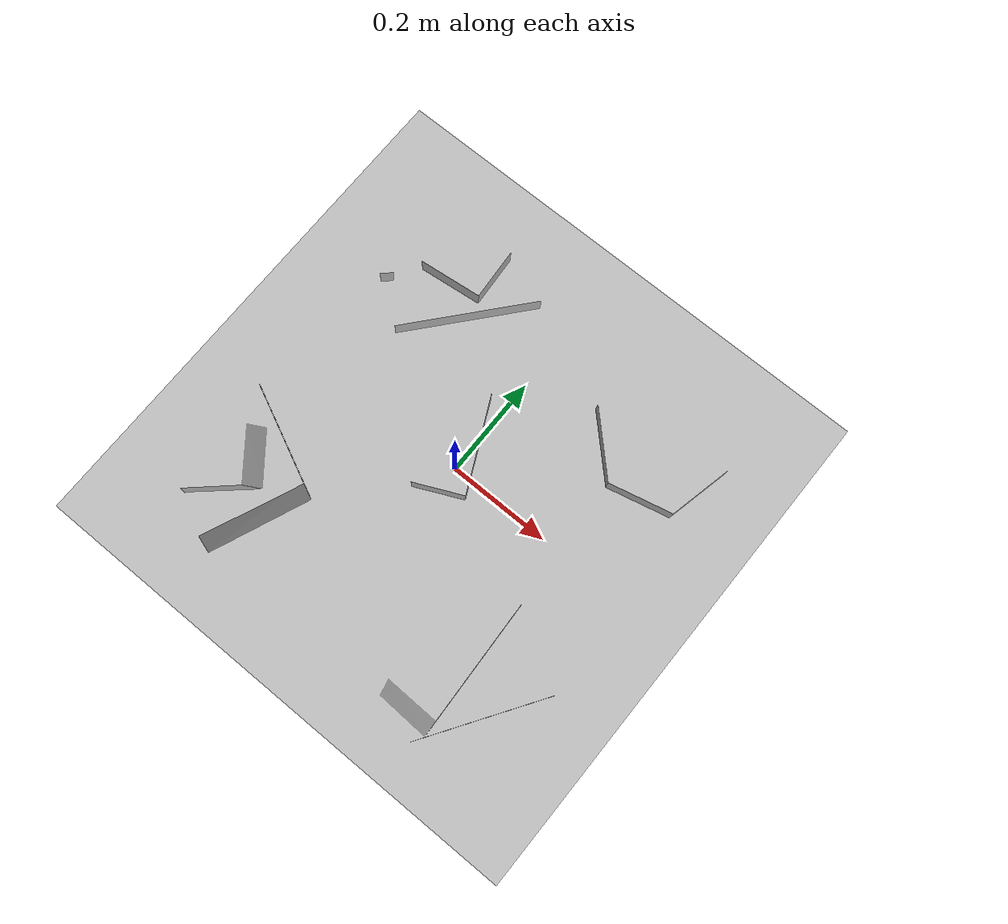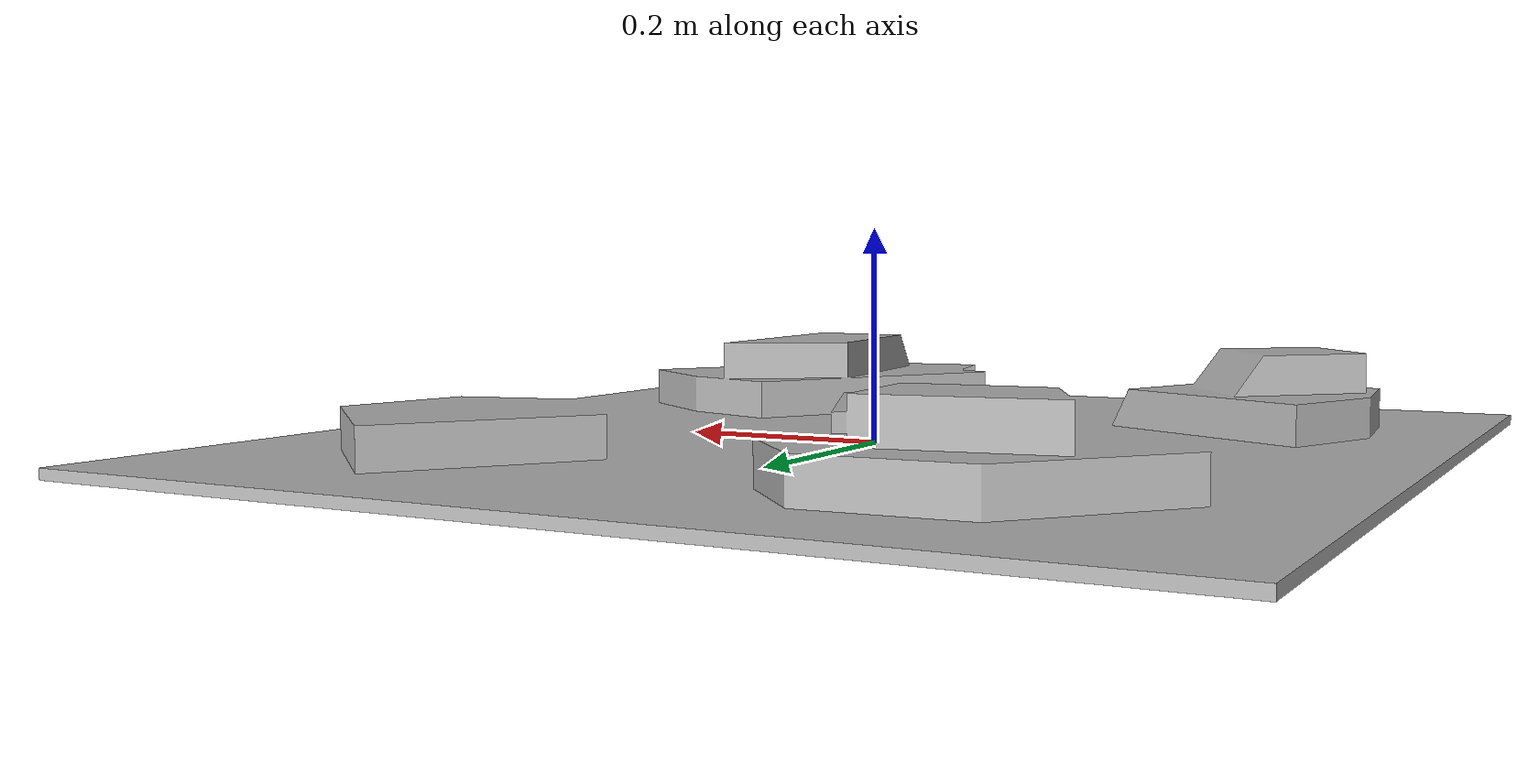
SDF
<?xml version="1.0" ?>
<sdf version="1.5">
  <model name="bumps">
    <static>false</static>
    <link name="link">
      <pose>0 0 0 0 0 0</pose>

      <collision name="collision">
        <geometry>
          <mesh>
            <uri>model://bumps/meshes/bumps_1.obj</uri>
          </mesh>
        </geometry>
      </collision>

      <inertial>
        <pose>0 0 0 0 0 0</pose>
        <mass>1</mass>
        <inertia>
          <ixx>1</ixx>
          <ixy>0</ixy>
          <ixz>0</ixz>
          <iyy>1</iyy>
          <iyz>0</iyz>
          <izz>1</izz>
        </inertia>
      </inertial>

      <visual name="visual_abcedf">
        <geometry>
          <mesh>
            <uri>model://bumps/meshes/bumps_1.obj</uri>
          </mesh>
        </geometry>
        <material>
          <script>
            <uri>model://bumps/materials/scripts</uri>
            <uri>model://bumps/materials/textures</uri>
            <name>bumps/Diffuse</name>
          </script>
        </material>
      </visual>
    </link>
  </model>
</sdf>
